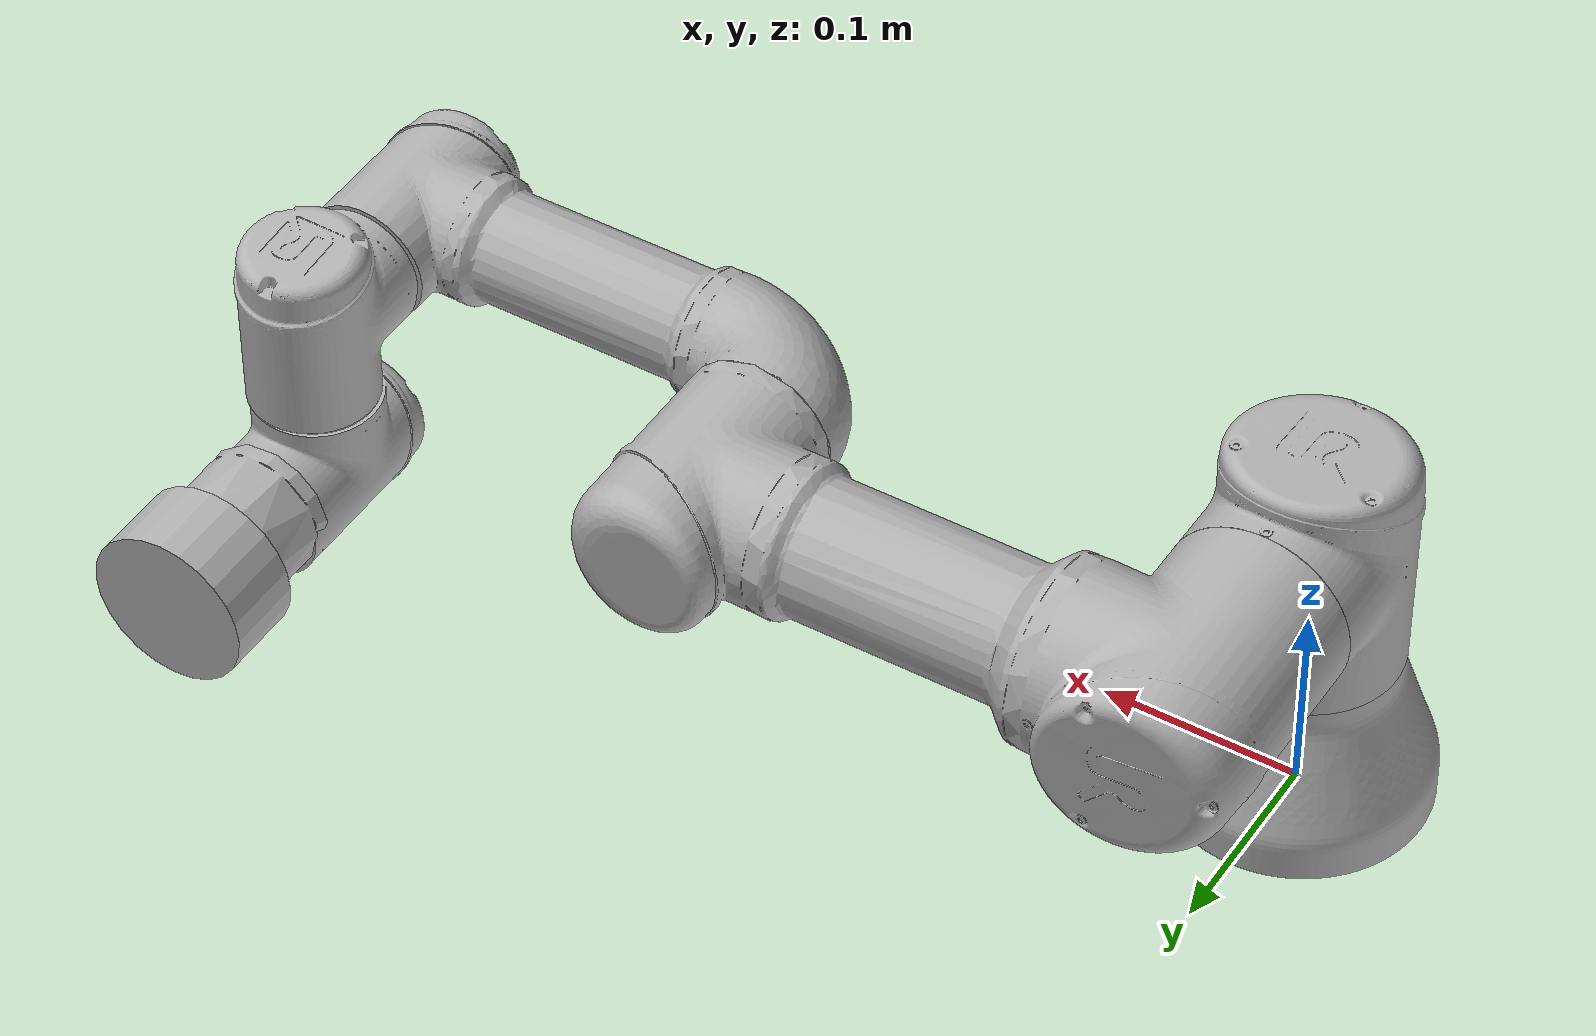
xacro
<?xml version="1.0"?>
<robot name="ur3" xmlns:xacro="http://ros.org/wiki/xacro">

  <xacro:include filename="$(find ur3_bringup)/urdf/ur3_description.urdf.xacro" />

  <!-- Spawn arm -->
  <xacro:ur3_robot prefix="" joint_limited="false" />
  <xacro:ur3_gazebo prefix="" />
  <xacro:ur3_transmission prefix="" hw_interface="hardware_interface/PositionJointInterface"/>

</robot>

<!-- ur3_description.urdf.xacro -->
<robot xmlns:xacro="http://wiki.ros.org/xacro">

<!--
  Author: Felix Messmer
-->

  <xacro:include filename="$(find ur_description)/urdf/ur.transmission.xacro" />
  <xacro:include filename="$(find ur_description)/urdf/ur.gazebo.xacro" />

   <xacro:macro name="cylinder_inertial" params="radius length mass *origin">
    <inertial>
      <mass value="${mass}" />
      <xacro:insert_block name="origin" />
      <inertia ixx="${0.0833333 * mass * (3 * radius * radius + length * length)}" ixy="0.0" ixz="0.0"
        iyy="${0.0833333 * mass * (3 * radius * radius + length * length)}" iyz="0.0"
        izz="${0.5 * mass * radius * radius}" />
    </inertial>
  </xacro:macro>

  <xacro:macro name="ur3_robot" params="prefix joint_limited
    shoulder_pan_lower_limit:=${-pi}    shoulder_pan_upper_limit:=${pi}
    shoulder_lift_lower_limit:=${-pi}    shoulder_lift_upper_limit:=${pi}
    elbow_joint_lower_limit:=${-pi}    elbow_joint_upper_limit:=${pi}
    wrist_1_lower_limit:=${-pi}    wrist_1_upper_limit:=${pi}
    wrist_2_lower_limit:=${-pi}    wrist_2_upper_limit:=${pi}
    wrist_3_lower_limit:=${-pi}    wrist_3_upper_limit:=${pi}
    transmission_hw_interface:=hardware_interface/PositionJointInterface
    safety_limits:=false safety_pos_margin:=0.15
    safety_k_position:=20">

    <!-- Inertia parameters -->
    <xacro:property name="base_mass" value="2.0" />  <!-- This mass might be incorrect -->
    <xacro:property name="shoulder_mass" value="2.0" />
    <xacro:property name="upper_arm_mass" value="3.42" />
    <xacro:property name="forearm_mass" value="1.26" />
    <xacro:property name="wrist_1_mass" value="0.8" />
    <xacro:property name="wrist_2_mass" value="0.8" />
    <xacro:property name="wrist_3_mass" value="0.35" />

    <xacro:property name="shoulder_cog" value="0.0 -0.02 0.0" />
    <xacro:property name="upper_arm_cog" value="0.13 0.0 0.1157" />
    <xacro:property name="forearm_cog" value="0.05 0.0 0.0238" />
    <xacro:property name="wrist_1_cog" value="0.0 0.0 0.01" />
    <xacro:property name="wrist_2_cog" value="0.0 0.0 0.01" />
    <xacro:property name="wrist_3_cog" value="0.0 0.0 -0.02" />

    <!-- Kinematic model -->
    <!-- Properties from urcontrol.conf -->
    <xacro:property name="d1" value="0.1519" />
    <xacro:property name="a2" value="-0.24365" />
    <xacro:property name="a3" value="-0.21325" />
    <xacro:property name="d4" value="0.11235" />
    <xacro:property name="d5" value="0.08535" />
    <xacro:property name="d6" value="0.0819" />

    <!-- Arbitrary offsets for shoulder/elbow joints -->
    <xacro:property name="shoulder_offset" value="0.1198" />  <!-- measured from model -->
    <xacro:property name="elbow_offset" value="-0.0925" /> <!-- measured from model -->

    <!-- link lengths used in model -->
    <xacro:property name="shoulder_height" value="${d1}" />
    <xacro:property name="upper_arm_length" value="${-a2}" />
    <xacro:property name="forearm_length" value="${-a3}" />
    <xacro:property name="wrist_1_length" value="${d4 - elbow_offset - shoulder_offset}" />
    <xacro:property name="wrist_2_length" value="${d5}" />
    <xacro:property name="wrist_3_length" value="${d6}" />

    <link name="${prefix}base_link" >
      <visual>
        <geometry>
          <mesh filename="package://ur_description/meshes/ur3/visual/base.dae"/>
        </geometry>
        <material name="LightGrey">
          <color rgba="0.7 0.7 0.7 1.0"/>
        </material>
      </visual>
      <collision>
        <geometry>
          <mesh filename="package://ur_description/meshes/ur3/collision/base.stl"/>
        </geometry>
      </collision>
      <xacro:cylinder_inertial radius="0.075" length="0.038" mass="${base_mass}">
        <origin xyz="0.0 0.0 0.0" rpy="0 0 0" />
      </xacro:cylinder_inertial>
    </link>

    <joint name="${prefix}shoulder_pan_joint" type="revolute">
      <parent link="${prefix}base_link" />
      <child link = "${prefix}shoulder_link" />
      <origin xyz="0.0 0.0 ${shoulder_height}" rpy="0.0 0.0 0.0" />
      <axis xyz="0 0 1" />
      <xacro:unless value="${joint_limited}">
        <limit lower="${-2.0 * pi}" upper="${2.0 * pi}" effort="330.0" velocity="2.16"/>
        <xacro:if value="${safety_limits}">
          <safety_controller soft_lower_limit="${-2.0 * pi + safety_pos_margin}" soft_upper_limit="${2.0 * pi - safety_pos_margin}" k_position="${safety_k_position}" k_velocity="0.0"/>
        </xacro:if>
      </xacro:unless>
      <xacro:if value="${joint_limited}">
        <limit lower="${shoulder_pan_lower_limit}" upper="${shoulder_pan_upper_limit}" effort="330.0" velocity="2.16"/>
        <xacro:if value="${safety_limits}">
          <safety_controller soft_lower_limit="${shoulder_pan_lower_limit + safety_pos_margin}" soft_upper_limit="${shoulder_pan_upper_limit - safety_pos_margin}" k_position="${safety_k_position}" k_velocity="0.0"/>
        </xacro:if>
      </xacro:if>
      <dynamics damping="0.0" friction="0.0"/>
    </joint>

    <link name="${prefix}shoulder_link">
      <visual>
        <geometry>
          <mesh filename="package://ur_description/meshes/ur3/visual/shoulder.dae"/>
        </geometry>
        <material name="LightGrey">
          <color rgba="0.7 0.7 0.7 1.0"/>
        </material>
      </visual>
      <collision>
        <geometry>
          <mesh filename="package://ur_description/meshes/ur3/collision/shoulder.stl"/>
        </geometry>
      </collision>
      <xacro:cylinder_inertial radius="0.075" length="0.178" mass="${shoulder_mass}">
        <origin xyz="0.0 0.0 0.0" rpy="0 0 0" />
      </xacro:cylinder_inertial>
    </link>

    <joint name="${prefix}shoulder_lift_joint" type="revolute">
      <parent link="${prefix}shoulder_link" />
      <child link = "${prefix}upper_arm_link" />
      <origin xyz="0.0 ${shoulder_offset} 0.0" rpy="0.0 ${pi / 2.0} 0.0" />
      <axis xyz="0 1 0" />
      <xacro:unless value="${joint_limited}">
        <limit lower="${-2.0 * pi}" upper="${2.0 * pi}" effort="330.0" velocity="2.16"/>
        <xacro:if value="${safety_limits}">
          <safety_controller soft_lower_limit="${-2.0 * pi + safety_pos_margin}" soft_upper_limit="${2.0 * pi - safety_pos_margin}" k_position="${safety_k_position}" k_velocity="0.0"/>
        </xacro:if>
      </xacro:unless>
      <xacro:if value="${joint_limited}">
        <limit lower="${shoulder_lift_lower_limit}" upper="${shoulder_lift_upper_limit}" effort="330.0" velocity="2.16"/>
        <xacro:if value="${safety_limits}">
          <safety_controller soft_lower_limit="${shoulder_lift_lower_limit + safety_pos_margin}" soft_upper_limit="${shoulder_lift_upper_limit - safety_pos_margin}" k_position="${safety_k_position}" k_velocity="0.0"/>
        </xacro:if>
      </xacro:if>
      <dynamics damping="0.0" friction="0.0"/>
    </joint>

    <link name="${prefix}upper_arm_link">
      <visual>
        <geometry>
          <mesh filename="package://ur_description/meshes/ur3/visual/upperarm.dae"/>
        </geometry>
        <material name="LightGrey">
          <color rgba="0.7 0.7 0.7 1.0"/>
        </material>
      </visual>
      <collision>
        <geometry>
          <mesh filename="package://ur_description/meshes/ur3/collision/upperarm.stl"/>
        </geometry>
      </collision>
      <xacro:cylinder_inertial radius="0.075" length="${-a2}" mass="${upper_arm_mass}">
        <origin xyz="0.0 0.0 ${-a2/2.0}" rpy="0 0 0" />
      </xacro:cylinder_inertial>
    </link>

    <joint name="${prefix}elbow_joint" type="revolute">
      <parent link="${prefix}upper_arm_link" />
      <child link = "${prefix}forearm_link" />
      <origin xyz="0.0 ${elbow_offset} ${upper_arm_length}" rpy="0.0 0.0 0.0" />
      <axis xyz="0 1 0" />
      <xacro:unless value="${joint_limited}">
        <limit lower="${-pi}" upper="${pi}" effort="150.0" velocity="3.15"/>
        <xacro:if value="${safety_limits}">
          <safety_controller soft_lower_limit="${-2.0 * pi + safety_pos_margin}" soft_upper_limit="${2.0 * pi - safety_pos_margin}" k_position="${safety_k_position}" k_velocity="0.0"/>
        </xacro:if>
      </xacro:unless>
      <xacro:if value="${joint_limited}">
        <limit lower="${elbow_joint_lower_limit}" upper="${elbow_joint_upper_limit}" effort="150.0" velocity="3.15"/>
        <xacro:if value="${safety_limits}">
          <safety_controller soft_lower_limit="${elbow_joint_lower_limit + safety_pos_margin}" soft_upper_limit="${elbow_joint_upper_limit - safety_pos_margin}" k_position="${safety_k_position}" k_velocity="0.0"/>
        </xacro:if>
      </xacro:if>
      <dynamics damping="0.0" friction="0.0"/>
    </joint>

    <link name="${prefix}forearm_link">
      <visual>
         <geometry>
          <mesh filename="package://ur_description/meshes/ur3/visual/forearm.dae"/>
        </geometry>
        <material name="LightGrey">
          <color rgba="0.7 0.7 0.7 1.0"/>
        </material>
      </visual>
      <collision>
        <geometry>
          <mesh filename="package://ur_description/meshes/ur3/collision/forearm.stl"/>
        </geometry>
      </collision>
      <xacro:cylinder_inertial radius="0.075" length="${-a3}" mass="${forearm_mass}">
        <origin xyz="0.0 0.0 ${-a3/2.0}" rpy="0 0 0" />
      </xacro:cylinder_inertial>
    </link>

    <joint name="${prefix}wrist_1_joint" type="revolute">
      <parent link="${prefix}forearm_link" />
      <child link = "${prefix}wrist_1_link" />
      <origin xyz="0.0 0.0 ${forearm_length}" rpy="0.0 ${pi / 2.0} 0.0" />
      <axis xyz="0 1 0" />
      <xacro:unless value="${joint_limited}">
        <limit lower="${-2.0 * pi}" upper="${2.0 * pi}" effort="54.0" velocity="3.2"/>
        <xacro:if value="${safety_limits}">
          <safety_controller soft_lower_limit="${-2.0 * pi + safety_pos_margin}" soft_upper_limit="${2.0 * pi - safety_pos_margin}" k_position="${safety_k_position}" k_velocity="0.0"/>
        </xacro:if>
      </xacro:unless>
      <xacro:if value="${joint_limited}">
        <limit lower="${wrist_1_lower_limit}" upper="${wrist_1_upper_limit}" effort="54.0" velocity="3.2"/>
        <xacro:if value="${safety_limits}">
          <safety_controller soft_lower_limit="${wrist_1_lower_limit + safety_pos_margin}" soft_upper_limit="${wrist_1_upper_limit - safety_pos_margin}" k_position="${safety_k_position}" k_velocity="0.0"/>
        </xacro:if>
      </xacro:if>
      <dynamics damping="0.0" friction="0.0"/>
    </joint>

    <link name="${prefix}wrist_1_link">
      <visual>
        <geometry>
          <mesh filename="package://ur_description/meshes/ur3/visual/wrist1.dae"/>
        </geometry>
        <material name="LightGrey">
          <color rgba="0.7 0.7 0.7 1.0"/>
        </material>
      </visual>
      <collision>
        <geometry>
          <mesh filename="package://ur_description/meshes/ur3/collision/wrist1.stl"/>
        </geometry>
      </collision>
      <xacro:cylinder_inertial radius="0.075" length="0.12" mass="${wrist_1_mass}">
        <origin xyz="0.0 ${wrist_1_length} 0.0" rpy="0 0 0" />
      </xacro:cylinder_inertial>
    </link>

    <joint name="${prefix}wrist_2_joint" type="revolute">
      <parent link="${prefix}wrist_1_link" />
      <child link = "${prefix}wrist_2_link" />
      <origin xyz="0.0 ${wrist_1_length} 0.0" rpy="0.0 0.0 0.0" />
      <axis xyz="0 0 1" />
      <xacro:unless value="${joint_limited}">
        <limit lower="${-2.0 * pi}" upper="${2.0 * pi}" effort="54.0" velocity="3.2"/>
        <xacro:if value="${safety_limits}">
          <safety_controller soft_lower_limit="${-2.0 * pi + safety_pos_margin}" soft_upper_limit="${2.0 * pi - safety_pos_margin}" k_position="${safety_k_position}" k_velocity="0.0"/>
        </xacro:if>
      </xacro:unless>
      <xacro:if value="${joint_limited}">
        <limit lower="${wrist_2_lower_limit}" upper="${wrist_2_upper_limit}" effort="54.0" velocity="3.2"/>
        <xacro:if value="${safety_limits}">
          <safety_controller soft_lower_limit="${wrist_2_lower_limit + safety_pos_margin}" soft_upper_limit="${wrist_2_upper_limit - safety_pos_margin}" k_position="${safety_k_position}" k_velocity="0.0"/>
        </xacro:if>
      </xacro:if>
      <dynamics damping="0.0" friction="0.0"/>
    </joint>

    <link name="${prefix}wrist_2_link">
      <visual>
        <geometry>
          <mesh filename="package://ur_description/meshes/ur3/visual/wrist2.dae"/>
        </geometry>
        <material name="LightGrey">
          <color rgba="0.7 0.7 0.7 1.0"/>
        </material>
      </visual>
      <collision>
        <geometry>
          <mesh filename="package://ur_description/meshes/ur3/collision/wrist2.stl"/>
        </geometry>
      </collision>
      <xacro:cylinder_inertial radius="0.075" length="0.12" mass="${wrist_2_mass}">
        <origin xyz="0.0 0.0 ${wrist_2_length}" rpy="0 0 0" />
      </xacro:cylinder_inertial>
    </link>

    <joint name="${prefix}wrist_3_joint" type="revolute">
      <parent link="${prefix}wrist_2_link" />
      <child link = "${prefix}wrist_3_link" />
      <origin xyz="0.0 0.0 ${wrist_2_length}" rpy="0.0 0.0 0.0" />
      <axis xyz="0 1 0" />
      <xacro:unless value="${joint_limited}">
        <limit lower="${-2.0 * pi}" upper="${2.0 * pi}" effort="54.0" velocity="3.2"/>
        <xacro:if value="${safety_limits}">
          <safety_controller soft_lower_limit="${-2.0 * pi + safety_pos_margin}" soft_upper_limit="${2.0 * pi - safety_pos_margin}" k_position="${safety_k_position}" k_velocity="0.0"/>
        </xacro:if>
      </xacro:unless>
      <xacro:if value="${joint_limited}">
        <limit lower="${wrist_3_lower_limit}" upper="${wrist_3_upper_limit}" effort="54.0" velocity="3.2"/>
        <xacro:if value="${safety_limits}">
          <safety_controller soft_lower_limit="${wrist_3_lower_limit + safety_pos_margin}" soft_upper_limit="${wrist_3_upper_limit - safety_pos_margin}" k_position="${safety_k_position}" k_velocity="0.0"/>
        </xacro:if>
      </xacro:if>
      <dynamics damping="0.0" friction="0.0"/>
    </joint>

    <link name="${prefix}wrist_3_link">
      <visual>
        <geometry>
          <mesh filename="package://ur_description/meshes/ur3/visual/wrist3.dae"/>
        </geometry>
        <material name="LightGrey">
          <color rgba="0.7 0.7 0.7 1.0"/>
        </material>
      </visual>
      <collision>
        <geometry>
          <mesh filename="package://ur_description/meshes/ur3/collision/wrist3.stl"/>
        </geometry>
      </collision>
      <xacro:cylinder_inertial radius="0.032" length="0.04" mass="${wrist_3_mass}">
        <origin xyz="0.0 ${wrist_3_length - 0.02} 0.0" rpy="${pi/2} 0 0" />
      </xacro:cylinder_inertial>
    </link>

    <joint name="${prefix}ee_fixed_joint" type="fixed">
      <parent link="${prefix}wrist_3_link" />
      <child link = "${prefix}ee_link" />
      <origin xyz="0.0 ${wrist_3_length} 0.0" rpy="0.0 0.0 ${pi/2.0}" />
    </joint>

    <link name="${prefix}ee_link">
      <collision>
        <geometry>
          <box size="0.01 0.01 0.01"/>
        </geometry>
        <origin rpy="0 0 0" xyz="-0.01 0 0"/>
      </collision>
    </link>

    <!-- ROS base_link to UR 'Base' Coordinates transform -->
      <!-- NOTE: this rotation is only needed as long as base_link itself is
                 not corrected wrt the real robot (ie: rotated over 180
                 degrees)
      -->

    <link name="FT_link">
      <visual>
        <geometry>
          <cylinder length="0.04" radius="0.04"/>
        </geometry>
        <material name="white">
          <color rgba="0.7 0.7 0.7 1.0"/>
        </material>
      </visual>

      <collision>
        <geometry>
          <cylinder length="0.04" radius="0.035"/>
        </geometry>
      </collision>
    </link>

    <joint name="FT_joint" type="fixed">
      <origin xyz="0.02 0 0" rpy="0 1.57 0" />
      <parent link="ee_link" />
      <child link="FT_link" />
    </joint>

  </xacro:macro>

  <xacro:macro name="ur3_gazebo" params="prefix">

    <gazebo reference="${prefix}shoulder_link">
      <selfCollide>true</selfCollide>
    </gazebo>
    <gazebo reference="${prefix}upper_arm_link">
      <selfCollide>true</selfCollide>
    </gazebo>
    <gazebo reference="${prefix}forearm_link">
      <selfCollide>true</selfCollide>
    </gazebo>
    <gazebo reference="${prefix}wrist_1_link">
      <selfCollide>true</selfCollide>
    </gazebo>
    <gazebo reference="${prefix}wrist_3_link">
      <selfCollide>true</selfCollide>
    </gazebo>
    <gazebo reference="${prefix}wrist_2_link">
      <selfCollide>true</selfCollide>
    </gazebo>
    <gazebo reference="${prefix}ee_link">
      <selfCollide>true</selfCollide>
    </gazebo>

  </xacro:macro>

  <xacro:macro name="ur3_transmission" params="prefix hw_interface">

    <transmission name="${prefix}shoulder_pan_trans">
      <type>transmission_interface/SimpleTransmission</type>
      <joint name="${prefix}shoulder_pan_joint">
        <hardwareInterface>${hw_interface}</hardwareInterface>
      </joint>
      <actuator name="${prefix}shoulder_pan_motor">
        <mechanicalReduction>1</mechanicalReduction>
      </actuator>
    </transmission>

    <transmission name="${prefix}shoulder_lift_trans">
      <type>transmission_interface/SimpleTransmission</type>
      <joint name="${prefix}shoulder_lift_joint">
        <hardwareInterface>${hw_interface}</hardwareInterface>
      </joint>
      <actuator name="${prefix}shoulder_lift_motor">
        <mechanicalReduction>1</mechanicalReduction>
      </actuator>
    </transmission>

    <transmission name="${prefix}elbow_trans">
      <type>transmission_interface/SimpleTransmission</type>
      <joint name="${prefix}elbow_joint">
        <hardwareInterface>${hw_interface}</hardwareInterface>
      </joint>
      <actuator name="${prefix}elbow_motor">
        <mechanicalReduction>1</mechanicalReduction>
      </actuator>
    </transmission>

    <transmission name="${prefix}wrist_1_trans">
      <type>transmission_interface/SimpleTransmission</type>
      <joint name="${prefix}wrist_1_joint">
        <hardwareInterface>${hw_interface}</hardwareInterface>
      </joint>
      <actuator name="${prefix}wrist_1_motor">
        <mechanicalReduction>1</mechanicalReduction>
      </actuator>
    </transmission>

    <transmission name="${prefix}wrist_2_trans">
      <type>transmission_interface/SimpleTransmission</type>
      <joint name="${prefix}wrist_2_joint">
        <hardwareInterface>${hw_interface}</hardwareInterface>
      </joint>
      <actuator name="${prefix}wrist_2_motor">
        <mechanicalReduction>1</mechanicalReduction>
      </actuator>
    </transmission>

    <transmission name="${prefix}wrist_3_trans">
      <type>transmission_interface/SimpleTransmission</type>
      <joint name="${prefix}wrist_3_joint">
        <hardwareInterface>${hw_interface}</hardwareInterface>
      </joint>
      <actuator name="${prefix}wrist_3_motor">
        <mechanicalReduction>1</mechanicalReduction>
      </actuator>
    </transmission>

  </xacro:macro>

  <gazebo>
    <plugin name="gazebo_ros_control" filename="libgazebo_ros_control.so">
      <robotNamespace>/</robotNamespace>
      <legacyModeNS>true</legacyModeNS>
    </plugin>
  </gazebo>
</robot>
